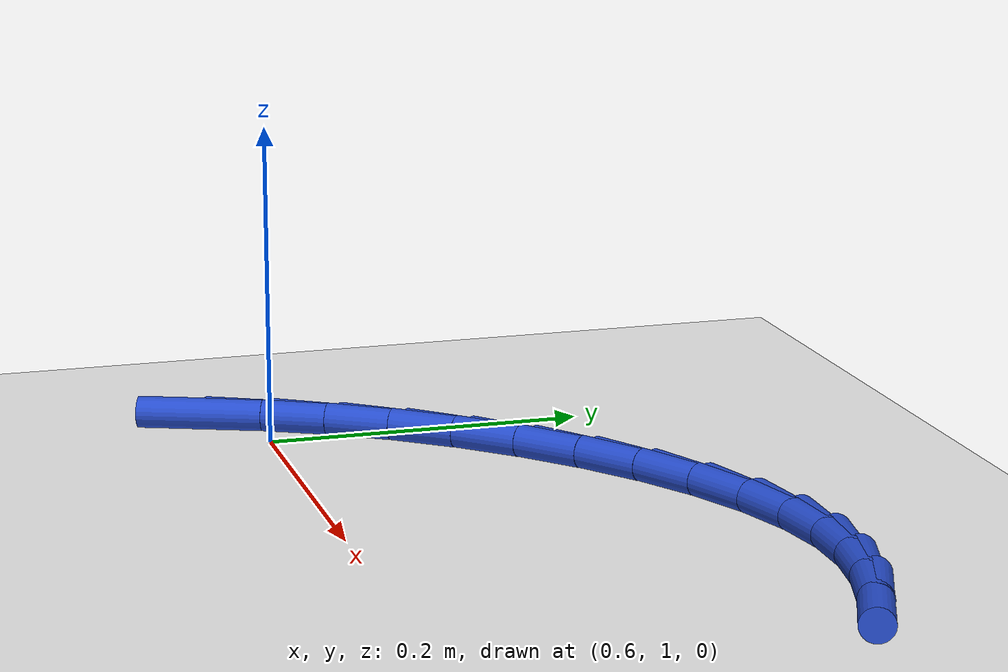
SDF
<sdf version="1.6">
 <world name="default">
  <model name="ground_plane">
   <static>1</static>
   <link name="link">
    <collision name="collision">
     <geometry><plane><normal>0 0 1</normal><size>100 100</size></plane></geometry>
     <surface><friction><ode><mu>100</mu><mu2>50</mu2></ode></friction></surface>
    </collision>
    <visual name="visual">
     <cast_shadows>0</cast_shadows>
     <geometry><plane><normal>0 0 1</normal><size>100 100</size></plane></geometry>
     <material>
      <script><uri>file://media/materials/scripts/gazebo.material</uri><name>Gazebo/WhiteGlow</name></script>
     </material>
    </visual>
   </link>
  </model>
  <model name="line">
   <link name="link_29">
    <pose>0.5576301509524737 0.96378155508821 0.01 0 1.57 1.180175594671434</pose>
    <collision name="collision">
     <geometry><cylinder><radius>0.01</radius><length>0.08</length></cylinder></geometry>
    </collision>
    <visual name="visual">
     <material>
      <script><name>Gazebo/Blue</name><uri>file://media/materials/scripts/gazebo.material</uri></script>
     </material>
     <geometry><cylinder><radius>0.01</radius><length>0.08</length></cylinder></geometry>
    </visual>
   </link>
   <link name="link_30">
    <pose>0.5737638732435874 1.0029619287499651 0.01 0 1.57 1.0921632405418389</pose>
    <collision name="collision">
     <geometry><cylinder><radius>0.01</radius><length>0.08</length></cylinder></geometry>
    </collision>
    <visual name="visual">
     <material>
      <script><name>Gazebo/Blue</name><uri>file://media/materials/scripts/gazebo.material</uri></script>
     </material>
     <geometry><cylinder><radius>0.01</radius><length>0.08</length></cylinder></geometry>
    </visual>
   </link>
   <link name="link_31">
    <pose>0.5935410301082394 1.0410774073641091 0.01 0 1.57 0.9924328100676605</pose>
    <collision name="collision">
     <geometry><cylinder><radius>0.01</radius><length>0.08</length></cylinder></geometry>
    </collision>
    <visual name="visual">
     <material>
      <script><name>Gazebo/Blue</name><uri>file://media/materials/scripts/gazebo.material</uri></script>
     </material>
     <geometry><cylinder><radius>0.01</radius><length>0.08</length></cylinder></geometry>
    </visual>
   </link>
   <link name="link_32">
    <pose>0.6174261201630655 1.0776642926635582 0.01 0 1.57 0.8979612889216475</pose>
    <collision name="collision">
     <geometry><cylinder><radius>0.01</radius><length>0.08</length></cylinder></geometry>
    </collision>
    <visual name="visual">
     <material>
      <script><name>Gazebo/Blue</name><uri>file://media/materials/scripts/gazebo.material</uri></script>
     </material>
     <geometry><cylinder><radius>0.01</radius><length>0.08</length></cylinder></geometry>
    </visual>
   </link>
   <link name="link_33">
    <pose>0.6449490473149506 1.1122026914387504 0.01 0 1.57 0.8075137057887503</pose>
    <collision name="collision">
     <geometry><cylinder><radius>0.01</radius><length>0.08</length></cylinder></geometry>
    </collision>
    <visual name="visual">
     <material>
      <script><name>Gazebo/Blue</name><uri>file://media/materials/scripts/gazebo.material</uri></script>
     </material>
     <geometry><cylinder><radius>0.01</radius><length>0.08</length></cylinder></geometry>
    </visual>
   </link>
   <link name="link_34">
    <pose>0.6755290045945821 1.1441660537001808 0.01 0 1.57 0.717760168533304</pose>
    <collision name="collision">
     <geometry><cylinder><radius>0.01</radius><length>0.08</length></cylinder></geometry>
    </collision>
    <visual name="visual">
     <material>
      <script><name>Gazebo/Blue</name><uri>file://media/materials/scripts/gazebo.material</uri></script>
     </material>
     <geometry><cylinder><radius>0.01</radius><length>0.08</length></cylinder></geometry>
    </visual>
   </link>
   <link name="link_35">
    <pose>0.7085851850326469 1.1730278294583452 0.01 0 1.57 0.625312395822167</pose>
    <collision name="collision">
     <geometry><cylinder><radius>0.01</radius><length>0.08</length></cylinder></geometry>
    </collision>
    <visual name="visual">
     <material>
      <script><name>Gazebo/Blue</name><uri>file://media/materials/scripts/gazebo.material</uri></script>
     </material>
     <geometry><cylinder><radius>0.01</radius><length>0.08</length></cylinder></geometry>
    </visual>
   </link>
   <link name="link_36">
    <pose>0.7435367816598317 1.198261468723738 0.01 0 1.57 0.5265025715095883</pose>
    <collision name="collision">
     <geometry><cylinder><radius>0.01</radius><length>0.08</length></cylinder></geometry>
    </collision>
    <visual name="visual">
     <material>
      <script><name>Gazebo/Blue</name><uri>file://media/materials/scripts/gazebo.material</uri></script>
     </material>
     <geometry><cylinder><radius>0.01</radius><length>0.08</length></cylinder></geometry>
    </visual>
   </link>
   <link name="link_37">
    <pose>0.7798029875068235 1.2193404215068544 0.01 0 1.57 0.4171691489627002</pose>
    <collision name="collision">
     <geometry><cylinder><radius>0.01</radius><length>0.08</length></cylinder></geometry>
    </collision>
    <visual name="visual">
     <material>
      <script><name>Gazebo/Blue</name><uri>file://media/materials/scripts/gazebo.material</uri></script>
     </material>
     <geometry><cylinder><radius>0.01</radius><length>0.08</length></cylinder></geometry>
    </visual>
   </link>
   <link name="link_38">
    <pose>0.8168029956043089 1.2357381378181895 0.01 0 1.57 0.29254365792671816</pose>
    <collision name="collision">
     <geometry><cylinder><radius>0.01</radius><length>0.08</length></cylinder></geometry>
    </collision>
    <visual name="visual">
     <material>
      <script><name>Gazebo/Blue</name><uri>file://media/materials/scripts/gazebo.material</uri></script>
     </material>
     <geometry><cylinder><radius>0.01</radius><length>0.08</length></cylinder></geometry>
    </visual>
   </link>
   <link name="link_39">
    <pose>0.8539559989829751 1.2469280676682382 0.01 0 1.57 0.14747331689437954</pose>
    <collision name="collision">
     <geometry><cylinder><radius>0.01</radius><length>0.08</length></cylinder></geometry>
    </collision>
    <visual name="visual">
     <material>
      <script><name>Gazebo/Blue</name><uri>file://media/materials/scripts/gazebo.material</uri></script>
     </material>
     <geometry><cylinder><radius>0.01</radius><length>0.08</length></cylinder></geometry>
    </visual>
   </link>
   <link name="link_40">
    <pose>0.8906811906735093 1.2523836610674959 0.01 0 1.57 -0.016351206418530283</pose>
    <collision name="collision">
     <geometry><cylinder><radius>0.01</radius><length>0.08</length></cylinder></geometry>
    </collision>
    <visual name="visual">
     <material>
      <script><name>Gazebo/Blue</name><uri>file://media/materials/scripts/gazebo.material</uri></script>
     </material>
     <geometry><cylinder><radius>0.01</radius><length>0.08</length></cylinder></geometry>
    </visual>
   </link>
   <link name="link_41">
    <pose>0.9265363697001605 1.2517973333792214 0.01 0 1.57 -0.17012788651870434</pose>
    <collision name="collision">
     <geometry><cylinder><radius>0.01</radius><length>0.08</length></cylinder></geometry>
    </collision>
    <visual name="visual">
     <material>
      <script><name>Gazebo/Blue</name><uri>file://media/materials/scripts/gazebo.material</uri></script>
     </material>
     <geometry><cylinder><radius>0.01</radius><length>0.08</length></cylinder></geometry>
    </visual>
   </link>
   <link name="link_42">
    <pose>0.9616512548317919 1.2457650006408687 0.01 0 1.57 -0.2981648159815667</pose>
    <collision name="collision">
     <geometry><cylinder><radius>0.01</radius><length>0.08</length></cylinder></geometry>
    </collision>
    <visual name="visual">
     <material>
      <script><name>Gazebo/Blue</name><uri>file://media/materials/scripts/gazebo.material</uri></script>
     </material>
     <geometry><cylinder><radius>0.01</radius><length>0.08</length></cylinder></geometry>
    </visual>
   </link>
   <link name="link_43">
    <pose>0.9963030558633342 1.235115580535222 0.01 0 1.57 -0.3966879468717914</pose>
    <collision name="collision">
     <geometry><cylinder><radius>0.01</radius><length>0.08</length></cylinder></geometry>
    </collision>
    <visual name="visual">
     <material>
      <script><name>Gazebo/Blue</name><uri>file://media/materials/scripts/gazebo.material</uri></script>
     </material>
     <geometry><cylinder><radius>0.01</radius><length>0.08</length></cylinder></geometry>
    </visual>
   </link>
  </model>
 </world>
</sdf>
